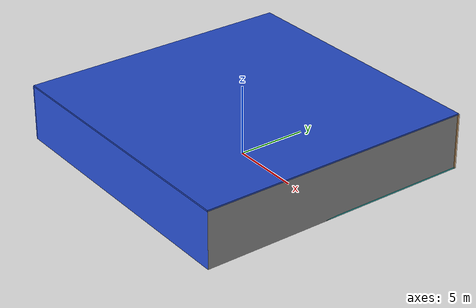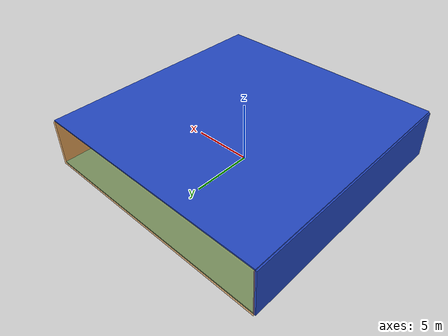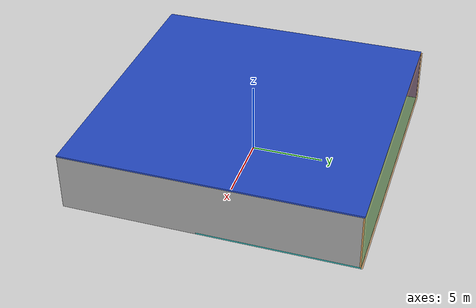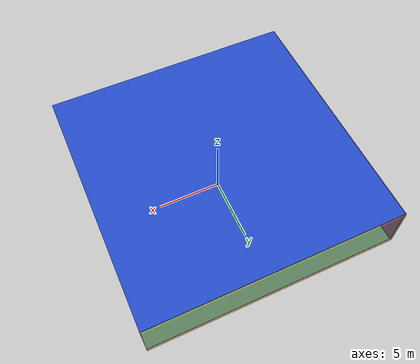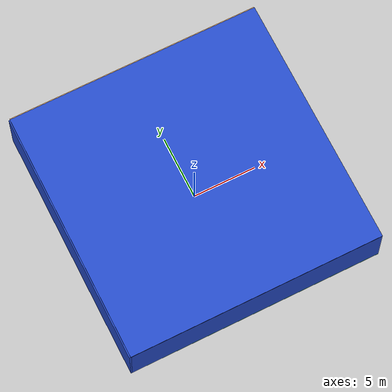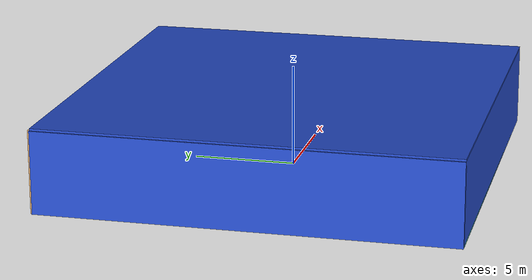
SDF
<sdf version="1.4">
 <world name="default">
  <physics type="ode">
   <max_step_size>0.001</max_step_size>
   <real_time_factor>1</real_time_factor>
   <real_time_update_rate>1000</real_time_update_rate>
   <gravity>0 0 -9.8</gravity>
  </physics>
  <scene><ambient>0.4 0.4 0.4 1</ambient><background>0.7 0.7 0.7 1</background><shadows>1</shadows></scene>
  <model name="Surrounding">
   <static>1</static>
   <link name="Ceiling">
    <collision name="Ceiling_Collision"><geometry><box><size>20 20 0.1</size></box></geometry></collision>
    <visual name="Ceiling_Visual">
     <geometry><box><size>20 20 0.1</size></box></geometry>
     <material>
      <script><uri>file://media/materials/scripts/gazebo.material</uri><name>Gazebo/BlueLaser</name></script>
     </material>
    </visual>
    <pose>0 0 4.05 0 0 0</pose>
   </link>
   <link name="Wall_South">
    <collision name="Wall_South_Collision">
     <geometry><box><size>20 0 4</size></box></geometry>
     <pose>0 0 2 0 -0 0</pose>
    </collision>
    <visual name="Wall_South_Visual">
     <pose>0 0 2 0 -0 0</pose>
     <geometry><box><size>20 0 4</size></box></geometry>
     <material>
      <script><uri>file://media/materials/scripts/gazebo.material</uri><name>Gazebo/Blue</name></script>
     </material>
    </visual>
    <velocity_decay><linear>0</linear><angular>0</angular></velocity_decay>
    <pose>0 -10 0 0 -0 0</pose>
   </link>
   <link name="Wall_East">
    <collision name="Wall_21_Collision">
     <geometry><box><size>20 0 4</size></box></geometry>
     <pose>0 0 2 0 -0 0</pose>
    </collision>
    <visual name="Wall_21_Visual">
     <pose>0 0 2 0 -0 0</pose>
     <geometry><box><size>20 0 4</size></box></geometry>
     <material>
      <script><uri>file://media/materials/scripts/gazebo.material</uri><name>Gazebo/Grey</name></script>
     </material>
    </visual>
    <velocity_decay><linear>0</linear><angular>0</angular></velocity_decay>
    <pose>10 0 0 0 -0 1.5708</pose>
   </link>
   <link name="Wall_North">
    <collision name="Wall_22_Collision">
     <geometry><box><size>20 0.2 4</size></box></geometry>
     <pose>0 0 2 0 -0 0</pose>
    </collision>
    <visual name="Wall_22_Visual">
     <pose>0 0 2 0 -0 0</pose>
     <geometry><box><size>20 0.2 4</size></box></geometry>
     <material>
      <script>
       <uri>file://media/materials/scripts/gazebo.material</uri>
       <name>Gazebo/OrangeTransparent</name>
      </script>
     </material>
    </visual>
    <velocity_decay><linear>0</linear><angular>0</angular></velocity_decay>
    <pose>0 10 0 0 -0 0</pose>
   </link>
   <link name="Wall_West">
    <collision name="Wall_23_Collision">
     <geometry><box><size>20 0.2 4</size></box></geometry>
     <pose>0 0 2 0 -0 0</pose>
    </collision>
    <visual name="Wall_23_Visual">
     <pose>0 0 2 0 -0 0</pose>
     <geometry><box><size>20 0.2 4</size></box></geometry>
     <material>
      <script><uri>file://media/materials/scripts/gazebo.material</uri><name>Gazebo/Blue</name></script>
     </material>
    </visual>
    <velocity_decay><linear>0</linear><angular>0</angular></velocity_decay>
    <pose>-10 0 0 0 0 -1.5708</pose>
   </link>
   <link name="Ground_link">
    <collision name="collision">
     <pose>0 0 .05 0 -0 0</pose>
     <geometry><box><size>20 20 0.1</size></box></geometry>
    </collision>
    <visual name="visual">
     <pose>0 0 .05 0 -0 0</pose>
     <geometry><box><size>20 20 0.1</size></box></geometry>
     <material>
      <script><uri>file://media/materials/scripts/gazebo.material</uri><name>Gazebo/Turquoise</name></script>
     </material>
    </visual>
   </link>
   <static>1</static>
  </model>
  <spherical_coordinates>
   <surface_model>EARTH_WGS84</surface_model>
   <latitude_deg>0</latitude_deg>
   <longitude_deg>0</longitude_deg>
   <elevation>0</elevation>
   <heading_deg>0</heading_deg>
  </spherical_coordinates>
  <light name="lightball_0" type="diffuse">
   <diffuse>0.8 0.8 0.8 1</diffuse>
   <specular>0.2 0.2 0.2 1</specular>
   <attenuation>
    <range>100</range>
    <constant>0.7</constant>
    <linear>0.01</linear>
    <quadratic>0.001</quadratic>
   </attenuation>
   <direction>-0.5 0.1 -0.9</direction>
   <pose>-3.57492201666 6.38343212717 2.39769453116 0 0 0</pose>
  </light>
  <light name="lightball_1" type="diffuse">
   <diffuse>0.8 0.8 0.8 1</diffuse>
   <specular>0.2 0.2 0.2 1</specular>
   <attenuation>
    <range>100</range>
    <constant>0.7</constant>
    <linear>0.01</linear>
    <quadratic>0.001</quadratic>
   </attenuation>
   <direction>-0.5 0.1 -0.9</direction>
   <pose>-4.07839559928 -0.772292767595 1.46572673931 0 0 0</pose>
  </light>
  <light name="lightball_2" type="diffuse">
   <diffuse>0.8 0.8 0.8 1</diffuse>
   <specular>0.2 0.2 0.2 1</specular>
   <attenuation>
    <range>100</range>
    <constant>0.7</constant>
    <linear>0.01</linear>
    <quadratic>0.001</quadratic>
   </attenuation>
   <direction>-0.5 0.1 -0.9</direction>
   <pose>2.35886348779 -6.60144926373 3.31139539411 0 0 0</pose>
  </light>
  <light name="lightball_3" type="diffuse">
   <diffuse>0.8 0.8 0.8 1</diffuse>
   <specular>0.2 0.2 0.2 1</specular>
   <attenuation>
    <range>100</range>
    <constant>0.7</constant>
    <linear>0.01</linear>
    <quadratic>0.001</quadratic>
   </attenuation>
   <direction>-0.5 0.1 -0.9</direction>
   <pose>-1.65166903155 -0.731899595814 2.84030984971 0 0 0</pose>
  </light>
  <light name="lightball_4" type="diffuse">
   <diffuse>0.8 0.8 0.8 1</diffuse>
   <specular>0.2 0.2 0.2 1</specular>
   <attenuation>
    <range>100</range>
    <constant>0.7</constant>
    <linear>0.01</linear>
    <quadratic>0.001</quadratic>
   </attenuation>
   <direction>-0.5 0.1 -0.9</direction>
   <pose>-6.0163153613 4.24988347099 3.83310800516 0 0 0</pose>
  </light>
  <light name="lightball_5" type="diffuse">
   <diffuse>0.8 0.8 0.8 1</diffuse>
   <specular>0.2 0.2 0.2 1</specular>
   <attenuation>
    <range>100</range>
    <constant>0.7</constant>
    <linear>0.01</linear>
    <quadratic>0.001</quadratic>
   </attenuation>
   <direction>-0.5 0.1 -0.9</direction>
   <pose>3.93128210098 6.53082439145 1.20692814075 0 0 0</pose>
  </light>
  <light name="lightball_6" type="diffuse">
   <diffuse>0.8 0.8 0.8 1</diffuse>
   <specular>0.2 0.2 0.2 1</specular>
   <attenuation>
    <range>100</range>
    <constant>0.7</constant>
    <linear>0.01</linear>
    <quadratic>0.001</quadratic>
   </attenuation>
   <direction>-0.5 0.1 -0.9</direction>
   <pose>7.12570354954 8.55375000147 1.75020368091 0 0 0</pose>
  </light>
  <light name="lightball_7" type="diffuse">
   <diffuse>0.8 0.8 0.8 1</diffuse>
   <specular>0.2 0.2 0.2 1</specular>
   <attenuation>
    <range>100</range>
    <constant>0.7</constant>
    <linear>0.01</linear>
    <quadratic>0.001</quadratic>
   </attenuation>
   <direction>-0.5 0.1 -0.9</direction>
   <pose>0.319263460708 -4.63866354116 1.13129570971 0 0 0</pose>
  </light>
  <light name="lightball_8" type="diffuse">
   <diffuse>0.8 0.8 0.8 1</diffuse>
   <specular>0.2 0.2 0.2 1</specular>
   <attenuation>
    <range>100</range>
    <constant>0.7</constant>
    <linear>0.01</linear>
    <quadratic>0.001</quadratic>
   </attenuation>
   <direction>-0.5 0.1 -0.9</direction>
   <pose>7.73458347941 7.7135525706 2.04839993445 0 0 0</pose>
  </light>
  <light name="lightball_9" type="diffuse">
   <diffuse>0.8 0.8 0.8 1</diffuse>
   <specular>0.2 0.2 0.2 1</specular>
   <attenuation>
    <range>100</range>
    <constant>0.7</constant>
    <linear>0.01</linear>
    <quadratic>0.001</quadratic>
   </attenuation>
   <direction>-0.5 0.1 -0.9</direction>
   <pose>5.21392812665 3.7609297409 1.43194305484 0 0 0</pose>
  </light>
  <light name="lightball_10" type="diffuse">
   <diffuse>0.8 0.8 0.8 1</diffuse>
   <specular>0.2 0.2 0.2 1</specular>
   <attenuation>
    <range>100</range>
    <constant>0.7</constant>
    <linear>0.01</linear>
    <quadratic>0.001</quadratic>
   </attenuation>
   <direction>-0.5 0.1 -0.9</direction>
   <pose>-3.98332773539 8.22084368908 0.852656640668 0 0 0</pose>
  </light>
  <light name="lightball_11" type="diffuse">
   <diffuse>0.8 0.8 0.8 1</diffuse>
   <specular>0.2 0.2 0.2 1</specular>
   <attenuation>
    <range>100</range>
    <constant>0.7</constant>
    <linear>0.01</linear>
    <quadratic>0.001</quadratic>
   </attenuation>
   <direction>-0.5 0.1 -0.9</direction>
   <pose>8.2055182986 -4.40800997679 1.20384220862 0 0 0</pose>
  </light>
  <light name="lightball_12" type="diffuse">
   <diffuse>0.8 0.8 0.8 1</diffuse>
   <specular>0.2 0.2 0.2 1</specular>
   <attenuation>
    <range>100</range>
    <constant>0.7</constant>
    <linear>0.01</linear>
    <quadratic>0.001</quadratic>
   </attenuation>
   <direction>-0.5 0.1 -0.9</direction>
   <pose>-2.59022131578 -5.69664109867 1.53067617209 0 0 0</pose>
  </light>
  <light name="lightball_13" type="diffuse">
   <diffuse>0.8 0.8 0.8 1</diffuse>
   <specular>0.2 0.2 0.2 1</specular>
   <attenuation>
    <range>100</range>
    <constant>0.7</constant>
    <linear>0.01</linear>
    <quadratic>0.001</quadratic>
   </attenuation>
   <direction>-0.5 0.1 -0.9</direction>
   <pose>7.63232234728 6.3670683847 1.83579813382 0 0 0</pose>
  </light>
  <include>
   <uri>model://first_2015_trash_can</uri>
   <pose>-0.95663877421 3.83259523551 0 0 0 2.50873275345</pose>
  </include>
  <include><uri>model://cabinet</uri><pose>3.90832167597 -7.70079865457 0 0 0 2.33716060422</pose></include>
 </world>
</sdf>

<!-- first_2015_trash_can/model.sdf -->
<sdf version="1.5">
  <model name="first_2015_trash_can">
    <link name="link">
      <inertial>
        <pose>0 0 0.3683 0 0 0</pose>
        <mass>4.83076</mass>
        <inertia>
          <ixx>0.281534052</ixx>
          <ixy>0</ixy>
          <ixz>0</ixz>
          <iyy>0.281534052</iyy>
          <iyz>0</iyz>
          <izz>0.126222831</izz>
        </inertia>
      </inertial>

      <visual name="visual">
        <geometry>
          <mesh>
            <uri>model://first_2015_trash_can/meshes/trash_can.dae</uri>
          </mesh>
        </geometry>
      </visual>

      <collision name="collision">
        <geometry>
          <mesh>
            <uri>model://first_2015_trash_can/meshes/trash_can.dae</uri>
          </mesh>
        </geometry>
      </collision>
    </link>
  </model>
</sdf>

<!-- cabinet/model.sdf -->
<sdf version="1.5">
  <model name="cabinet">
    <static>true</static>
    <link name="cabinet_bottom_plate">
      <inertial>
        <pose>0 0 -1 0 0 0</pose>
        <inertia>
          <ixx>2.050000</ixx>
          <ixy>0</ixy>
          <ixz>0</ixz>
          <iyy>2.050000</iyy>
          <iyz>0</iyz>
          <izz>2.050000</izz>
        </inertia>
        <mass>25.000000</mass>
      </inertial>
      <collision name="cabinet_bottom_plate_geom">
        <pose>0 0 0.010000 0 0 0</pose>
        <geometry>
          <box>
            <size>0.450000 0.450000 0.020000</size>
          </box>
        </geometry>
      </collision>
      <visual name="cabinet_bottom_plate_geom_visual">
        <pose>0 0 0.010000 0 0 0</pose>
        <geometry>
          <box>
            <size>0.450000 0.450000 0.020000</size>
          </box>
        </geometry>
        <material>
          <script>
            <uri>model://media/materials/scripts/gazebo.material</uri>
            <name>Gazebo/Wood</name>
          </script>
        </material>
      </visual>
      <collision name="cabinet_bottom_plate_geom_cabinet_back_plate">
        <pose>0.235000 0 0.510000 0 0 0</pose>
        <geometry>
          <box>
            <size>0.020000 0.450000 1.020000</size>
          </box>
        </geometry>
      </collision>
      <visual name="cabinet_bottom_plate_geom_cabinet_back_plate_visual">
        <pose>0.235000 0 0.510000 0 0 0</pose>
        <geometry>
          <box>
            <size>0.020000 0.450000 1.020000</size>
          </box>
        </geometry>
        <material>
          <script>
            <uri>model://media/materials/scripts/gazebo.material</uri>
            <name>Gazebo/Wood</name>
          </script>
        </material>
      </visual>
      <collision name="cabinet_bottom_plate_geom_cabinet_left_plate">
        <pose>0 0.235000 0.510000 0 0 0</pose>
        <geometry>
          <box>
            <size>0.450000 0.020000 1.020000</size>
          </box>
        </geometry>
      </collision>
      <visual name="cabinet_bottom_plate_geom_cabinet_left_plate_visual">
        <pose>0 0.235000 0.510000 0 0 0</pose>
        <geometry>
          <box>
            <size>0.450000 0.020000 1.020000</size>
          </box>
        </geometry>
        <material>
          <script>
            <uri>model://media/materials/scripts/gazebo.material</uri>
            <name>Gazebo/Wood</name>
          </script>
        </material>
      </visual>
      <collision name="cabinet_bottom_plate_geom_cabinet_middle_plate">
        <pose>0 0 0.510000 0 0 0</pose>
        <geometry>
          <box>
            <size>0.450000 0.450000 0.020000</size>
          </box>
        </geometry>
      </collision>
      <visual name="cabinet_bottom_plate_geom_cabinet_middle_plate_visual">
        <pose>0 0 0.510000 0 0 0</pose>
        <geometry>
          <box>
            <size>0.450000 0.450000 0.020000</size>
          </box>
        </geometry>
        <material>
          <script>
            <uri>model://media/materials/scripts/gazebo.material</uri>
            <name>Gazebo/Wood</name>
          </script>
        </material>
      </visual>
      <collision name="cabinet_bottom_plate_geom_cabinet_right_plate">
        <pose>0 -0.235000 0.510000 0 0 0</pose>
        <geometry>
          <box>
            <size>0.450000 0.020000 1.020000</size>
          </box>
        </geometry>
      </collision>
      <visual name="cabinet_bottom_plate_geom_cabinet_right_plate_visual">
        <pose>0 -0.235000 0.510000 0 0 0</pose>
        <geometry>
          <box>
            <size>0.450000 0.020000 1.020000</size>
          </box>
        </geometry>
        <material>
          <script>
            <uri>model://media/materials/scripts/gazebo.material</uri>
            <name>Gazebo/Wood</name>
          </script>
        </material>
      </visual>
      <collision name="cabinet_bottom_plate_geom_cabinet_top_plate">
        <pose>0 0 1.010000 0 0 0</pose>
        <geometry>
          <box>
            <size>0.450000 0.450000 0.020000</size>
          </box>
        </geometry>
      </collision>
      <visual name="cabinet_bottom_plate_geom_cabinet_top_plate_visual">
        <pose>0 0 1.010000 0 0 0</pose>
        <geometry>
          <box>
            <size>0.450000 0.450000 0.020000</size>
          </box>
        </geometry>
        <material>
          <script>
            <uri>model://media/materials/scripts/gazebo.material</uri>
            <name>Gazebo/Wood</name>
          </script>
        </material>
      </visual>
    </link>
  </model>
</sdf>
